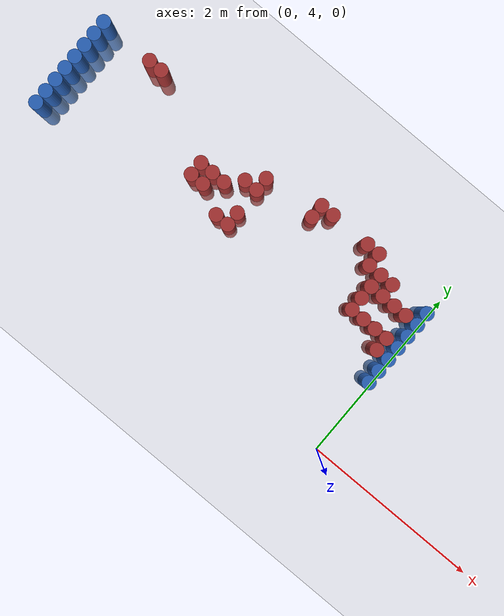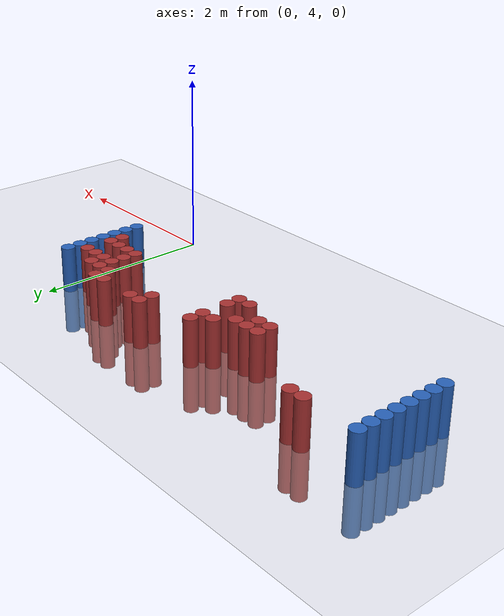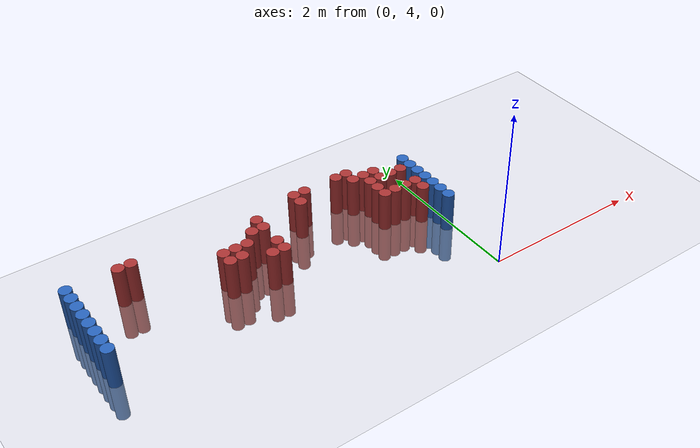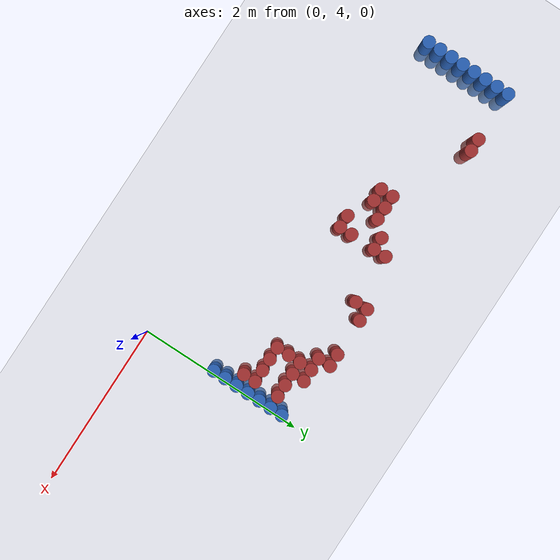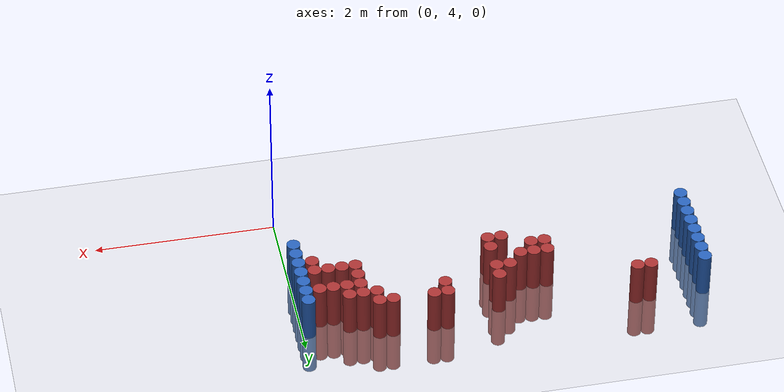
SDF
<sdf version="1.6">
 <world name="default">
  <model name="ground_plane">
   <static>1</static>
   <link name="link">
    <collision name="collision">
     <geometry><plane><normal>0 0 1</normal><size>100 100</size></plane></geometry>
     <surface><friction><ode><mu>100</mu><mu2>50</mu2></ode></friction></surface>
    </collision>
    <visual name="visual">
     <cast_shadows>0</cast_shadows>
     <geometry><plane><normal>0 0 1</normal><size>100 100</size></plane></geometry>
     <material>
      <script><uri>file://media/materials/scripts/gazebo.material</uri><name>Gazebo/Grey</name></script>
     </material>
    </visual>
   </link>
  </model>
  <model name="unit_cylinder_92">
   <static>1</static>
   <pose>-0.075000 4.875000 0.000000 0.000000 0.000000 0.000000</pose>
   <link name="link">
    <inertial>
     <mass>1</mass>
     <inertia><ixx>0.145833</ixx><ixy>0</ixy><ixz>0</ixz><iyy>0.145833</iyy><iyz>0</iyz><izz>0.125</izz></inertia>
    </inertial>
    <collision name="collision">
     <geometry><cylinder><radius>0.075000</radius><length>1</length></cylinder></geometry>
    </collision>
    <visual name="visual">
     <geometry><cylinder><radius>0.075000</radius><length>1</length></cylinder></geometry>
     <material>
      <ambient>0.152000 0.379000 0.720000 1</ambient>
      <diffuse>0.152000 0.379000 0.720000 1</diffuse>
     </material>
     <material>
      <script><name>Gazebo/Grey</name><uri>file://media/materials/scripts/gazebo.material</uri></script>
     </material>
    </visual>
   </link>
  </model>
  <model name="unit_cylinder_93">
   <static>1</static>
   <pose>-4.425000 4.875000 0.000000 0.000000 0.000000 0.000000</pose>
   <link name="link">
    <inertial>
     <mass>1</mass>
     <inertia><ixx>0.145833</ixx><ixy>0</ixy><ixz>0</ixz><iyy>0.145833</iyy><iyz>0</iyz><izz>0.125</izz></inertia>
    </inertial>
    <collision name="collision">
     <geometry><cylinder><radius>0.075000</radius><length>1</length></cylinder></geometry>
    </collision>
    <visual name="visual">
     <geometry><cylinder><radius>0.075000</radius><length>1</length></cylinder></geometry>
     <material>
      <ambient>0.152000 0.379000 0.720000 1</ambient>
      <diffuse>0.152000 0.379000 0.720000 1</diffuse>
     </material>
     <material>
      <script><name>Gazebo/Grey</name><uri>file://media/materials/scripts/gazebo.material</uri></script>
     </material>
    </visual>
   </link>
  </model>
  <model name="unit_cylinder_94">
   <static>1</static>
   <pose>-0.075000 5.025000 0.000000 0.000000 0.000000 0.000000</pose>
   <link name="link">
    <inertial>
     <mass>1</mass>
     <inertia><ixx>0.145833</ixx><ixy>0</ixy><ixz>0</ixz><iyy>0.145833</iyy><iyz>0</iyz><izz>0.125</izz></inertia>
    </inertial>
    <collision name="collision">
     <geometry><cylinder><radius>0.075000</radius><length>1</length></cylinder></geometry>
    </collision>
    <visual name="visual">
     <geometry><cylinder><radius>0.075000</radius><length>1</length></cylinder></geometry>
     <material>
      <ambient>0.152000 0.379000 0.720000 1</ambient>
      <diffuse>0.152000 0.379000 0.720000 1</diffuse>
     </material>
     <material>
      <script><name>Gazebo/Grey</name><uri>file://media/materials/scripts/gazebo.material</uri></script>
     </material>
    </visual>
   </link>
  </model>
  <model name="unit_cylinder_95">
   <static>1</static>
   <pose>-4.425000 5.025000 0.000000 0.000000 0.000000 0.000000</pose>
   <link name="link">
    <inertial>
     <mass>1</mass>
     <inertia><ixx>0.145833</ixx><ixy>0</ixy><ixz>0</ixz><iyy>0.145833</iyy><iyz>0</iyz><izz>0.125</izz></inertia>
    </inertial>
    <collision name="collision">
     <geometry><cylinder><radius>0.075000</radius><length>1</length></cylinder></geometry>
    </collision>
    <visual name="visual">
     <geometry><cylinder><radius>0.075000</radius><length>1</length></cylinder></geometry>
     <material>
      <ambient>0.152000 0.379000 0.720000 1</ambient>
      <diffuse>0.152000 0.379000 0.720000 1</diffuse>
     </material>
     <material>
      <script><name>Gazebo/Grey</name><uri>file://media/materials/scripts/gazebo.material</uri></script>
     </material>
    </visual>
   </link>
  </model>
  <model name="unit_cylinder_96">
   <static>1</static>
   <pose>-4.425000 5.175000 0.000000 0.000000 0.000000 0.000000</pose>
   <link name="link">
    <inertial>
     <mass>1</mass>
     <inertia><ixx>0.145833</ixx><ixy>0</ixy><ixz>0</ixz><iyy>0.145833</iyy><iyz>0</iyz><izz>0.125</izz></inertia>
    </inertial>
    <collision name="collision">
     <geometry><cylinder><radius>0.075000</radius><length>1</length></cylinder></geometry>
    </collision>
    <visual name="visual">
     <geometry><cylinder><radius>0.075000</radius><length>1</length></cylinder></geometry>
     <material>
      <ambient>0.152000 0.379000 0.720000 1</ambient>
      <diffuse>0.152000 0.379000 0.720000 1</diffuse>
     </material>
     <material>
      <script><name>Gazebo/Grey</name><uri>file://media/materials/scripts/gazebo.material</uri></script>
     </material>
    </visual>
   </link>
  </model>
  <model name="unit_cylinder_97">
   <static>1</static>
   <pose>-4.425000 5.325000 0.000000 0.000000 0.000000 0.000000</pose>
   <link name="link">
    <inertial>
     <mass>1</mass>
     <inertia><ixx>0.145833</ixx><ixy>0</ixy><ixz>0</ixz><iyy>0.145833</iyy><iyz>0</iyz><izz>0.125</izz></inertia>
    </inertial>
    <collision name="collision">
     <geometry><cylinder><radius>0.075000</radius><length>1</length></cylinder></geometry>
    </collision>
    <visual name="visual">
     <geometry><cylinder><radius>0.075000</radius><length>1</length></cylinder></geometry>
     <material>
      <ambient>0.152000 0.379000 0.720000 1</ambient>
      <diffuse>0.152000 0.379000 0.720000 1</diffuse>
     </material>
     <material>
      <script><name>Gazebo/Grey</name><uri>file://media/materials/scripts/gazebo.material</uri></script>
     </material>
    </visual>
   </link>
  </model>
  <model name="unit_cylinder_98">
   <static>1</static>
   <pose>-4.425000 5.475000 0.000000 0.000000 0.000000 0.000000</pose>
   <link name="link">
    <inertial>
     <mass>1</mass>
     <inertia><ixx>0.145833</ixx><ixy>0</ixy><ixz>0</ixz><iyy>0.145833</iyy><iyz>0</iyz><izz>0.125</izz></inertia>
    </inertial>
    <collision name="collision">
     <geometry><cylinder><radius>0.075000</radius><length>1</length></cylinder></geometry>
    </collision>
    <visual name="visual">
     <geometry><cylinder><radius>0.075000</radius><length>1</length></cylinder></geometry>
     <material>
      <ambient>0.152000 0.379000 0.720000 1</ambient>
      <diffuse>0.152000 0.379000 0.720000 1</diffuse>
     </material>
     <material>
      <script><name>Gazebo/Grey</name><uri>file://media/materials/scripts/gazebo.material</uri></script>
     </material>
    </visual>
   </link>
  </model>
  <model name="unit_cylinder_99">
   <static>1</static>
   <pose>-4.425000 5.625000 0.000000 0.000000 0.000000 0.000000</pose>
   <link name="link">
    <inertial>
     <mass>1</mass>
     <inertia><ixx>0.145833</ixx><ixy>0</ixy><ixz>0</ixz><iyy>0.145833</iyy><iyz>0</iyz><izz>0.125</izz></inertia>
    </inertial>
    <collision name="collision">
     <geometry><cylinder><radius>0.075000</radius><length>1</length></cylinder></geometry>
    </collision>
    <visual name="visual">
     <geometry><cylinder><radius>0.075000</radius><length>1</length></cylinder></geometry>
     <material>
      <ambient>0.152000 0.379000 0.720000 1</ambient>
      <diffuse>0.152000 0.379000 0.720000 1</diffuse>
     </material>
     <material>
      <script><name>Gazebo/Grey</name><uri>file://media/materials/scripts/gazebo.material</uri></script>
     </material>
    </visual>
   </link>
  </model>
  <model name="unit_cylinder_100">
   <static>1</static>
   <pose>-4.425000 5.775000 0.000000 0.000000 0.000000 0.000000</pose>
   <link name="link">
    <inertial>
     <mass>1</mass>
     <inertia><ixx>0.145833</ixx><ixy>0</ixy><ixz>0</ixz><iyy>0.145833</iyy><iyz>0</iyz><izz>0.125</izz></inertia>
    </inertial>
    <collision name="collision">
     <geometry><cylinder><radius>0.075000</radius><length>1</length></cylinder></geometry>
    </collision>
    <visual name="visual">
     <geometry><cylinder><radius>0.075000</radius><length>1</length></cylinder></geometry>
     <material>
      <ambient>0.152000 0.379000 0.720000 1</ambient>
      <diffuse>0.152000 0.379000 0.720000 1</diffuse>
     </material>
     <material>
      <script><name>Gazebo/Grey</name><uri>file://media/materials/scripts/gazebo.material</uri></script>
     </material>
    </visual>
   </link>
  </model>
  <model name="unit_cylinder_101">
   <static>1</static>
   <pose>-4.425000 5.925000 0.000000 0.000000 0.000000 0.000000</pose>
   <link name="link">
    <inertial>
     <mass>1</mass>
     <inertia><ixx>0.145833</ixx><ixy>0</ixy><ixz>0</ixz><iyy>0.145833</iyy><iyz>0</iyz><izz>0.125</izz></inertia>
    </inertial>
    <collision name="collision">
     <geometry><cylinder><radius>0.075000</radius><length>1</length></cylinder></geometry>
    </collision>
    <visual name="visual">
     <geometry><cylinder><radius>0.075000</radius><length>1</length></cylinder></geometry>
     <material>
      <ambient>0.152000 0.379000 0.720000 1</ambient>
      <diffuse>0.152000 0.379000 0.720000 1</diffuse>
     </material>
     <material>
      <script><name>Gazebo/Grey</name><uri>file://media/materials/scripts/gazebo.material</uri></script>
     </material>
    </visual>
   </link>
  </model>
  <model name="unit_cylinder_149">
   <static>1</static>
   <pose>-3.825000 5.925000 0.000000 0.000000 0.000000 0.000000</pose>
   <link name="link">
    <inertial>
     <mass>1</mass>
     <inertia><ixx>0.145833</ixx><ixy>0</ixy><ixz>0</ixz><iyy>0.145833</iyy><iyz>0</iyz><izz>0.125</izz></inertia>
    </inertial>
    <collision name="collision">
     <geometry><cylinder><radius>0.075000</radius><length>1</length></cylinder></geometry>
    </collision>
    <visual name="visual">
     <geometry><cylinder><radius>0.075000</radius><length>1</length></cylinder></geometry>
     <material>
      <ambient>0.648000 0.192000 0.192000 1</ambient>
      <diffuse>0.648000 0.192000 0.192000 1</diffuse>
     </material>
     <material>
      <script><name>Gazebo/Grey</name><uri>file://media/materials/scripts/gazebo.material</uri></script>
     </material>
    </visual>
   </link>
  </model>
  <model name="unit_cylinder_152">
   <static>1</static>
   <pose>-3.675000 5.925000 0.000000 0.000000 0.000000 0.000000</pose>
   <link name="link">
    <inertial>
     <mass>1</mass>
     <inertia><ixx>0.145833</ixx><ixy>0</ixy><ixz>0</ixz><iyy>0.145833</iyy><iyz>0</iyz><izz>0.125</izz></inertia>
    </inertial>
    <collision name="collision">
     <geometry><cylinder><radius>0.075000</radius><length>1</length></cylinder></geometry>
    </collision>
    <visual name="visual">
     <geometry><cylinder><radius>0.075000</radius><length>1</length></cylinder></geometry>
     <material>
      <ambient>0.648000 0.192000 0.192000 1</ambient>
      <diffuse>0.648000 0.192000 0.192000 1</diffuse>
     </material>
     <material>
      <script><name>Gazebo/Grey</name><uri>file://media/materials/scripts/gazebo.material</uri></script>
     </material>
    </visual>
   </link>
  </model>
  <model name="unit_cylinder_158">
   <static>1</static>
   <pose>-2.775000 5.325000 0.000000 0.000000 0.000000 0.000000</pose>
   <link name="link">
    <inertial>
     <mass>1</mass>
     <inertia><ixx>0.145833</ixx><ixy>0</ixy><ixz>0</ixz><iyy>0.145833</iyy><iyz>0</iyz><izz>0.125</izz></inertia>
    </inertial>
    <collision name="collision">
     <geometry><cylinder><radius>0.075000</radius><length>1</length></cylinder></geometry>
    </collision>
    <visual name="visual">
     <geometry><cylinder><radius>0.075000</radius><length>1</length></cylinder></geometry>
     <material>
      <ambient>0.648000 0.192000 0.192000 1</ambient>
      <diffuse>0.648000 0.192000 0.192000 1</diffuse>
     </material>
     <material>
      <script><name>Gazebo/Grey</name><uri>file://media/materials/scripts/gazebo.material</uri></script>
     </material>
    </visual>
   </link>
  </model>
  <model name="unit_cylinder_159">
   <static>1</static>
   <pose>-2.775000 5.475000 0.000000 0.000000 0.000000 0.000000</pose>
   <link name="link">
    <inertial>
     <mass>1</mass>
     <inertia><ixx>0.145833</ixx><ixy>0</ixy><ixz>0</ixz><iyy>0.145833</iyy><iyz>0</iyz><izz>0.125</izz></inertia>
    </inertial>
    <collision name="collision">
     <geometry><cylinder><radius>0.075000</radius><length>1</length></cylinder></geometry>
    </collision>
    <visual name="visual">
     <geometry><cylinder><radius>0.075000</radius><length>1</length></cylinder></geometry>
     <material>
      <ambient>0.648000 0.192000 0.192000 1</ambient>
      <diffuse>0.648000 0.192000 0.192000 1</diffuse>
     </material>
     <material>
      <script><name>Gazebo/Grey</name><uri>file://media/materials/scripts/gazebo.material</uri></script>
     </material>
    </visual>
   </link>
  </model>
  <model name="unit_cylinder_160">
   <static>1</static>
   <pose>-2.625000 5.325000 0.000000 0.000000 0.000000 0.000000</pose>
   <link name="link">
    <inertial>
     <mass>1</mass>
     <inertia><ixx>0.145833</ixx><ixy>0</ixy><ixz>0</ixz><iyy>0.145833</iyy><iyz>0</iyz><izz>0.125</izz></inertia>
    </inertial>
    <collision name="collision">
     <geometry><cylinder><radius>0.075000</radius><length>1</length></cylinder></geometry>
    </collision>
    <visual name="visual">
     <geometry><cylinder><radius>0.075000</radius><length>1</length></cylinder></geometry>
     <material>
      <ambient>0.648000 0.192000 0.192000 1</ambient>
      <diffuse>0.648000 0.192000 0.192000 1</diffuse>
     </material>
     <material>
      <script><name>Gazebo/Grey</name><uri>file://media/materials/scripts/gazebo.material</uri></script>
     </material>
    </visual>
   </link>
  </model>
  <model name="unit_cylinder_161">
   <static>1</static>
   <pose>-2.625000 5.475000 0.000000 0.000000 0.000000 0.000000</pose>
   <link name="link">
    <inertial>
     <mass>1</mass>
     <inertia><ixx>0.145833</ixx><ixy>0</ixy><ixz>0</ixz><iyy>0.145833</iyy><iyz>0</iyz><izz>0.125</izz></inertia>
    </inertial>
    <collision name="collision">
     <geometry><cylinder><radius>0.075000</radius><length>1</length></cylinder></geometry>
    </collision>
    <visual name="visual">
     <geometry><cylinder><radius>0.075000</radius><length>1</length></cylinder></geometry>
     <material>
      <ambient>0.648000 0.192000 0.192000 1</ambient>
      <diffuse>0.648000 0.192000 0.192000 1</diffuse>
     </material>
     <material>
      <script><name>Gazebo/Grey</name><uri>file://media/materials/scripts/gazebo.material</uri></script>
     </material>
    </visual>
   </link>
  </model>
  <model name="unit_cylinder_162">
   <static>1</static>
   <pose>-2.475000 5.475000 0.000000 0.000000 0.000000 0.000000</pose>
   <link name="link">
    <inertial>
     <mass>1</mass>
     <inertia><ixx>0.145833</ixx><ixy>0</ixy><ixz>0</ixz><iyy>0.145833</iyy><iyz>0</iyz><izz>0.125</izz></inertia>
    </inertial>
    <collision name="collision">
     <geometry><cylinder><radius>0.075000</radius><length>1</length></cylinder></geometry>
    </collision>
    <visual name="visual">
     <geometry><cylinder><radius>0.075000</radius><length>1</length></cylinder></geometry>
     <material>
      <ambient>0.648000 0.192000 0.192000 1</ambient>
      <diffuse>0.648000 0.192000 0.192000 1</diffuse>
     </material>
     <material>
      <script><name>Gazebo/Grey</name><uri>file://media/materials/scripts/gazebo.material</uri></script>
     </material>
    </visual>
   </link>
  </model>
  <model name="unit_cylinder_163">
   <static>1</static>
   <pose>-2.325000 5.175000 0.000000 0.000000 0.000000 0.000000</pose>
   <link name="link">
    <inertial>
     <mass>1</mass>
     <inertia><ixx>0.145833</ixx><ixy>0</ixy><ixz>0</ixz><iyy>0.145833</iyy><iyz>0</iyz><izz>0.125</izz></inertia>
    </inertial>
    <collision name="collision">
     <geometry><cylinder><radius>0.075000</radius><length>1</length></cylinder></geometry>
    </collision>
    <visual name="visual">
     <geometry><cylinder><radius>0.075000</radius><length>1</length></cylinder></geometry>
     <material>
      <ambient>0.648000 0.192000 0.192000 1</ambient>
      <diffuse>0.648000 0.192000 0.192000 1</diffuse>
     </material>
     <material>
      <script><name>Gazebo/Grey</name><uri>file://media/materials/scripts/gazebo.material</uri></script>
     </material>
    </visual>
   </link>
  </model>
  <model name="unit_cylinder_164">
   <static>1</static>
   <pose>-2.325000 5.625000 0.000000 0.000000 0.000000 0.000000</pose>
   <link name="link">
    <inertial>
     <mass>1</mass>
     <inertia><ixx>0.145833</ixx><ixy>0</ixy><ixz>0</ixz><iyy>0.145833</iyy><iyz>0</iyz><izz>0.125</izz></inertia>
    </inertial>
    <collision name="collision">
     <geometry><cylinder><radius>0.075000</radius><length>1</length></cylinder></geometry>
    </collision>
    <visual name="visual">
     <geometry><cylinder><radius>0.075000</radius><length>1</length></cylinder></geometry>
     <material>
      <ambient>0.648000 0.192000 0.192000 1</ambient>
      <diffuse>0.648000 0.192000 0.192000 1</diffuse>
     </material>
     <material>
      <script><name>Gazebo/Grey</name><uri>file://media/materials/scripts/gazebo.material</uri></script>
     </material>
    </visual>
   </link>
  </model>
  <model name="unit_cylinder_165">
   <static>1</static>
   <pose>-2.175000 5.175000 0.000000 0.000000 0.000000 0.000000</pose>
   <link name="link">
    <inertial>
     <mass>1</mass>
     <inertia><ixx>0.145833</ixx><ixy>0</ixy><ixz>0</ixz><iyy>0.145833</iyy><iyz>0</iyz><izz>0.125</izz></inertia>
    </inertial>
    <collision name="collision">
     <geometry><cylinder><radius>0.075000</radius><length>1</length></cylinder></geometry>
    </collision>
    <visual name="visual">
     <geometry><cylinder><radius>0.075000</radius><length>1</length></cylinder></geometry>
     <material>
      <ambient>0.648000 0.192000 0.192000 1</ambient>
      <diffuse>0.648000 0.192000 0.192000 1</diffuse>
     </material>
     <material>
      <script><name>Gazebo/Grey</name><uri>file://media/materials/scripts/gazebo.material</uri></script>
     </material>
    </visual>
   </link>
  </model>
  <model name="unit_cylinder_166">
   <static>1</static>
   <pose>-2.175000 5.325000 0.000000 0.000000 0.000000 0.000000</pose>
   <link name="link">
    <inertial>
     <mass>1</mass>
     <inertia><ixx>0.145833</ixx><ixy>0</ixy><ixz>0</ixz><iyy>0.145833</iyy><iyz>0</iyz><izz>0.125</izz></inertia>
    </inertial>
    <collision name="collision">
     <geometry><cylinder><radius>0.075000</radius><length>1</length></cylinder></geometry>
    </collision>
    <visual name="visual">
     <geometry><cylinder><radius>0.075000</radius><length>1</length></cylinder></geometry>
     <material>
      <ambient>0.648000 0.192000 0.192000 1</ambient>
      <diffuse>0.648000 0.192000 0.192000 1</diffuse>
     </material>
     <material>
      <script><name>Gazebo/Grey</name><uri>file://media/materials/scripts/gazebo.material</uri></script>
     </material>
    </visual>
   </link>
  </model>
  <model name="unit_cylinder_167">
   <static>1</static>
   <pose>-2.175000 5.625000 0.000000 0.000000 0.000000 0.000000</pose>
   <link name="link">
    <inertial>
     <mass>1</mass>
     <inertia><ixx>0.145833</ixx><ixy>0</ixy><ixz>0</ixz><iyy>0.145833</iyy><iyz>0</iyz><izz>0.125</izz></inertia>
    </inertial>
    <collision name="collision">
     <geometry><cylinder><radius>0.075000</radius><length>1</length></cylinder></geometry>
    </collision>
    <visual name="visual">
     <geometry><cylinder><radius>0.075000</radius><length>1</length></cylinder></geometry>
     <material>
      <ambient>0.648000 0.192000 0.192000 1</ambient>
      <diffuse>0.648000 0.192000 0.192000 1</diffuse>
     </material>
     <material>
      <script><name>Gazebo/Grey</name><uri>file://media/materials/scripts/gazebo.material</uri></script>
     </material>
    </visual>
   </link>
  </model>
  <model name="unit_cylinder_168">
   <static>1</static>
   <pose>-2.175000 5.775000 0.000000 0.000000 0.000000 0.000000</pose>
   <link name="link">
    <inertial>
     <mass>1</mass>
     <inertia><ixx>0.145833</ixx><ixy>0</ixy><ixz>0</ixz><iyy>0.145833</iyy><iyz>0</iyz><izz>0.125</izz></inertia>
    </inertial>
    <collision name="collision">
     <geometry><cylinder><radius>0.075000</radius><length>1</length></cylinder></geometry>
    </collision>
    <visual name="visual">
     <geometry><cylinder><radius>0.075000</radius><length>1</length></cylinder></geometry>
     <material>
      <ambient>0.648000 0.192000 0.192000 1</ambient>
      <diffuse>0.648000 0.192000 0.192000 1</diffuse>
     </material>
     <material>
      <script><name>Gazebo/Grey</name><uri>file://media/materials/scripts/gazebo.material</uri></script>
     </material>
    </visual>
   </link>
  </model>
  <model name="unit_cylinder_178">
   <static>1</static>
   <pose>-1.575000 5.775000 0.000000 0.000000 0.000000 0.000000</pose>
   <link name="link">
    <inertial>
     <mass>1</mass>
     <inertia><ixx>0.145833</ixx><ixy>0</ixy><ixz>0</ixz><iyy>0.145833</iyy><iyz>0</iyz><izz>0.125</izz></inertia>
    </inertial>
    <collision name="collision">
     <geometry><cylinder><radius>0.075000</radius><length>1</length></cylinder></geometry>
    </collision>
    <visual name="visual">
     <geometry><cylinder><radius>0.075000</radius><length>1</length></cylinder></geometry>
     <material>
      <ambient>0.648000 0.192000 0.192000 1</ambient>
      <diffuse>0.648000 0.192000 0.192000 1</diffuse>
     </material>
     <material>
      <script><name>Gazebo/Grey</name><uri>file://media/materials/scripts/gazebo.material</uri></script>
     </material>
    </visual>
   </link>
  </model>
  <model name="unit_cylinder_179">
   <static>1</static>
   <pose>-1.575000 5.925000 0.000000 0.000000 0.000000 0.000000</pose>
   <link name="link">
    <inertial>
     <mass>1</mass>
     <inertia><ixx>0.145833</ixx><ixy>0</ixy><ixz>0</ixz><iyy>0.145833</iyy><iyz>0</iyz><izz>0.125</izz></inertia>
    </inertial>
    <collision name="collision">
     <geometry><cylinder><radius>0.075000</radius><length>1</length></cylinder></geometry>
    </collision>
    <visual name="visual">
     <geometry><cylinder><radius>0.075000</radius><length>1</length></cylinder></geometry>
     <material>
      <ambient>0.648000 0.192000 0.192000 1</ambient>
      <diffuse>0.648000 0.192000 0.192000 1</diffuse>
     </material>
     <material>
      <script><name>Gazebo/Grey</name><uri>file://media/materials/scripts/gazebo.material</uri></script>
     </material>
    </visual>
   </link>
  </model>
  <model name="unit_cylinder_185">
   <static>1</static>
   <pose>-1.425000 5.925000 0.000000 0.000000 0.000000 0.000000</pose>
   <link name="link">
    <inertial>
     <mass>1</mass>
     <inertia><ixx>0.145833</ixx><ixy>0</ixy><ixz>0</ixz><iyy>0.145833</iyy><iyz>0</iyz><izz>0.125</izz></inertia>
    </inertial>
    <collision name="collision">
     <geometry><cylinder><radius>0.075000</radius><length>1</length></cylinder></geometry>
    </collision>
    <visual name="visual">
     <geometry><cylinder><radius>0.075000</radius><length>1</length></cylinder></geometry>
     <material>
      <ambient>0.648000 0.192000 0.192000 1</ambient>
      <diffuse>0.648000 0.192000 0.192000 1</diffuse>
     </material>
     <material>
      <script><name>Gazebo/Grey</name><uri>file://media/materials/scripts/gazebo.material</uri></script>
     </material>
    </visual>
   </link>
  </model>
  <model name="unit_cylinder_191">
   <static>1</static>
   <pose>-0.975000 5.925000 0.000000 0.000000 0.000000 0.000000</pose>
   <link name="link">
    <inertial>
     <mass>1</mass>
     <inertia><ixx>0.145833</ixx><ixy>0</ixy><ixz>0</ixz><iyy>0.145833</iyy><iyz>0</iyz><izz>0.125</izz></inertia>
    </inertial>
    <collision name="collision">
     <geometry><cylinder><radius>0.075000</radius><length>1</length></cylinder></geometry>
    </collision>
    <visual name="visual">
     <geometry><cylinder><radius>0.075000</radius><length>1</length></cylinder></geometry>
     <material>
      <ambient>0.648000 0.192000 0.192000 1</ambient>
      <diffuse>0.648000 0.192000 0.192000 1</diffuse>
     </material>
     <material>
      <script><name>Gazebo/Grey</name><uri>file://media/materials/scripts/gazebo.material</uri></script>
     </material>
    </visual>
   </link>
  </model>
  <model name="unit_cylinder_196">
   <static>1</static>
   <pose>-0.825000 5.775000 0.000000 0.000000 0.000000 0.000000</pose>
   <link name="link">
    <inertial>
     <mass>1</mass>
     <inertia><ixx>0.145833</ixx><ixy>0</ixy><ixz>0</ixz><iyy>0.145833</iyy><iyz>0</iyz><izz>0.125</izz></inertia>
    </inertial>
    <collision name="collision">
     <geometry><cylinder><radius>0.075000</radius><length>1</length></cylinder></geometry>
    </collision>
    <visual name="visual">
     <geometry><cylinder><radius>0.075000</radius><length>1</length></cylinder></geometry>
     <material>
      <ambient>0.648000 0.192000 0.192000 1</ambient>
      <diffuse>0.648000 0.192000 0.192000 1</diffuse>
     </material>
     <material>
      <script><name>Gazebo/Grey</name><uri>file://media/materials/scripts/gazebo.material</uri></script>
     </material>
    </visual>
   </link>
  </model>
  <model name="unit_cylinder_197">
   <static>1</static>
   <pose>-0.825000 5.925000 0.000000 0.000000 0.000000 0.000000</pose>
   <link name="link">
    <inertial>
     <mass>1</mass>
     <inertia><ixx>0.145833</ixx><ixy>0</ixy><ixz>0</ixz><iyy>0.145833</iyy><iyz>0</iyz><izz>0.125</izz></inertia>
    </inertial>
    <collision name="collision">
     <geometry><cylinder><radius>0.075000</radius><length>1</length></cylinder></geometry>
    </collision>
    <visual name="visual">
     <geometry><cylinder><radius>0.075000</radius><length>1</length></cylinder></geometry>
     <material>
      <ambient>0.648000 0.192000 0.192000 1</ambient>
      <diffuse>0.648000 0.192000 0.192000 1</diffuse>
     </material>
     <material>
      <script><name>Gazebo/Grey</name><uri>file://media/materials/scripts/gazebo.material</uri></script>
     </material>
    </visual>
   </link>
  </model>
  <model name="unit_cylinder_204">
   <static>1</static>
   <pose>-0.675000 5.325000 0.000000 0.000000 0.000000 0.000000</pose>
   <link name="link">
    <inertial>
     <mass>1</mass>
     <inertia><ixx>0.145833</ixx><ixy>0</ixy><ixz>0</ixz><iyy>0.145833</iyy><iyz>0</iyz><izz>0.125</izz></inertia>
    </inertial>
    <collision name="collision">
     <geometry><cylinder><radius>0.075000</radius><length>1</length></cylinder></geometry>
    </collision>
    <visual name="visual">
     <geometry><cylinder><radius>0.075000</radius><length>1</length></cylinder></geometry>
     <material>
      <ambient>0.648000 0.192000 0.192000 1</ambient>
      <diffuse>0.648000 0.192000 0.192000 1</diffuse>
     </material>
     <material>
      <script><name>Gazebo/Grey</name><uri>file://media/materials/scripts/gazebo.material</uri></script>
     </material>
    </visual>
   </link>
  </model>
  <model name="unit_cylinder_205">
   <static>1</static>
   <pose>-0.675000 5.475000 0.000000 0.000000 0.000000 0.000000</pose>
   <link name="link">
    <inertial>
     <mass>1</mass>
     <inertia><ixx>0.145833</ixx><ixy>0</ixy><ixz>0</ixz><iyy>0.145833</iyy><iyz>0</iyz><izz>0.125</izz></inertia>
    </inertial>
    <collision name="collision">
     <geometry><cylinder><radius>0.075000</radius><length>1</length></cylinder></geometry>
    </collision>
    <visual name="visual">
     <geometry><cylinder><radius>0.075000</radius><length>1</length></cylinder></geometry>
     <material>
      <ambient>0.648000 0.192000 0.192000 1</ambient>
      <diffuse>0.648000 0.192000 0.192000 1</diffuse>
     </material>
     <material>
      <script><name>Gazebo/Grey</name><uri>file://media/materials/scripts/gazebo.material</uri></script>
     </material>
    </visual>
   </link>
  </model>
  <model name="unit_cylinder_206">
   <static>1</static>
   <pose>-0.675000 5.625000 0.000000 0.000000 0.000000 0.000000</pose>
   <link name="link">
    <inertial>
     <mass>1</mass>
     <inertia><ixx>0.145833</ixx><ixy>0</ixy><ixz>0</ixz><iyy>0.145833</iyy><iyz>0</iyz><izz>0.125</izz></inertia>
    </inertial>
    <collision name="collision">
     <geometry><cylinder><radius>0.075000</radius><length>1</length></cylinder></geometry>
    </collision>
    <visual name="visual">
     <geometry><cylinder><radius>0.075000</radius><length>1</length></cylinder></geometry>
     <material>
      <ambient>0.648000 0.192000 0.192000 1</ambient>
      <diffuse>0.648000 0.192000 0.192000 1</diffuse>
     </material>
     <material>
      <script><name>Gazebo/Grey</name><uri>file://media/materials/scripts/gazebo.material</uri></script>
     </material>
    </visual>
   </link>
  </model>
  <model name="unit_cylinder_207">
   <static>1</static>
   <pose>-0.675000 5.775000 0.000000 0.000000 0.000000 0.000000</pose>
   <link name="link">
    <inertial>
     <mass>1</mass>
     <inertia><ixx>0.145833</ixx><ixy>0</ixy><ixz>0</ixz><iyy>0.145833</iyy><iyz>0</iyz><izz>0.125</izz></inertia>
    </inertial>
    <collision name="collision">
     <geometry><cylinder><radius>0.075000</radius><length>1</length></cylinder></geometry>
    </collision>
    <visual name="visual">
     <geometry><cylinder><radius>0.075000</radius><length>1</length></cylinder></geometry>
     <material>
      <ambient>0.648000 0.192000 0.192000 1</ambient>
      <diffuse>0.648000 0.192000 0.192000 1</diffuse>
     </material>
     <material>
      <script><name>Gazebo/Grey</name><uri>file://media/materials/scripts/gazebo.material</uri></script>
     </material>
    </visual>
   </link>
  </model>
  <model name="unit_cylinder_217">
   <static>1</static>
   <pose>-0.525000 5.325000 0.000000 0.000000 0.000000 0.000000</pose>
   <link name="link">
    <inertial>
     <mass>1</mass>
     <inertia><ixx>0.145833</ixx><ixy>0</ixy><ixz>0</ixz><iyy>0.145833</iyy><iyz>0</iyz><izz>0.125</izz></inertia>
    </inertial>
    <collision name="collision">
     <geometry><cylinder><radius>0.075000</radius><length>1</length></cylinder></geometry>
    </collision>
    <visual name="visual">
     <geometry><cylinder><radius>0.075000</radius><length>1</length></cylinder></geometry>
     <material>
      <ambient>0.648000 0.192000 0.192000 1</ambient>
      <diffuse>0.648000 0.192000 0.192000 1</diffuse>
     </material>
     <material>
      <script><name>Gazebo/Grey</name><uri>file://media/materials/scripts/gazebo.material</uri></script>
     </material>
    </visual>
   </link>
  </model>
  <model name="unit_cylinder_218">
   <static>1</static>
   <pose>-0.525000 5.625000 0.000000 0.000000 0.000000 0.000000</pose>
   <link name="link">
    <inertial>
     <mass>1</mass>
     <inertia><ixx>0.145833</ixx><ixy>0</ixy><ixz>0</ixz><iyy>0.145833</iyy><iyz>0</iyz><izz>0.125</izz></inertia>
    </inertial>
    <collision name="collision">
     <geometry><cylinder><radius>0.075000</radius><length>1</length></cylinder></geometry>
    </collision>
    <visual name="visual">
     <geometry><cylinder><radius>0.075000</radius><length>1</length></cylinder></geometry>
     <material>
      <ambient>0.648000 0.192000 0.192000 1</ambient>
      <diffuse>0.648000 0.192000 0.192000 1</diffuse>
     </material>
     <material>
      <script><name>Gazebo/Grey</name><uri>file://media/materials/scripts/gazebo.material</uri></script>
     </material>
    </visual>
   </link>
  </model>
  <model name="unit_cylinder_219">
   <static>1</static>
   <pose>-0.525000 5.775000 0.000000 0.000000 0.000000 0.000000</pose>
   <link name="link">
    <inertial>
     <mass>1</mass>
     <inertia><ixx>0.145833</ixx><ixy>0</ixy><ixz>0</ixz><iyy>0.145833</iyy><iyz>0</iyz><izz>0.125</izz></inertia>
    </inertial>
    <collision name="collision">
     <geometry><cylinder><radius>0.075000</radius><length>1</length></cylinder></geometry>
    </collision>
    <visual name="visual">
     <geometry><cylinder><radius>0.075000</radius><length>1</length></cylinder></geometry>
     <material>
      <ambient>0.648000 0.192000 0.192000 1</ambient>
      <diffuse>0.648000 0.192000 0.192000 1</diffuse>
     </material>
     <material>
      <script><name>Gazebo/Grey</name><uri>file://media/materials/scripts/gazebo.material</uri></script>
     </material>
    </visual>
   </link>
  </model>
  <model name="unit_cylinder_226">
   <static>1</static>
   <pose>-0.375000 5.325000 0.000000 0.000000 0.000000 0.000000</pose>
   <link name="link">
    <inertial>
     <mass>1</mass>
     <inertia><ixx>0.145833</ixx><ixy>0</ixy><ixz>0</ixz><iyy>0.145833</iyy><iyz>0</iyz><izz>0.125</izz></inertia>
    </inertial>
    <collision name="collision">
     <geometry><cylinder><radius>0.075000</radius><length>1</length></cylinder></geometry>
    </collision>
    <visual name="visual">
     <geometry><cylinder><radius>0.075000</radius><length>1</length></cylinder></geometry>
     <material>
      <ambient>0.648000 0.192000 0.192000 1</ambient>
      <diffuse>0.648000 0.192000 0.192000 1</diffuse>
     </material>
     <material>
      <script><name>Gazebo/Grey</name><uri>file://media/materials/scripts/gazebo.material</uri></script>
     </material>
    </visual>
   </link>
  </model>
  <model name="unit_cylinder_227">
   <static>1</static>
   <pose>-0.375000 5.625000 0.000000 0.000000 0.000000 0.000000</pose>
   <link name="link">
    <inertial>
     <mass>1</mass>
     <inertia><ixx>0.145833</ixx><ixy>0</ixy><ixz>0</ixz><iyy>0.145833</iyy><iyz>0</iyz><izz>0.125</izz></inertia>
    </inertial>
    <collision name="collision">
     <geometry><cylinder><radius>0.075000</radius><length>1</length></cylinder></geometry>
    </collision>
    <visual name="visual">
     <geometry><cylinder><radius>0.075000</radius><length>1</length></cylinder></geometry>
     <material>
      <ambient>0.648000 0.192000 0.192000 1</ambient>
      <diffuse>0.648000 0.192000 0.192000 1</diffuse>
     </material>
     <material>
      <script><name>Gazebo/Grey</name><uri>file://media/materials/scripts/gazebo.material</uri></script>
     </material>
    </visual>
   </link>
  </model>
  <model name="unit_cylinder_235">
   <static>1</static>
   <pose>-0.225000 5.175000 0.000000 0.000000 0.000000 0.000000</pose>
   <link name="link">
    <inertial>
     <mass>1</mass>
     <inertia><ixx>0.145833</ixx><ixy>0</ixy><ixz>0</ixz><iyy>0.145833</iyy><iyz>0</iyz><izz>0.125</izz></inertia>
    </inertial>
    <collision name="collision">
     <geometry><cylinder><radius>0.075000</radius><length>1</length></cylinder></geometry>
    </collision>
    <visual name="visual">
     <geometry><cylinder><radius>0.075000</radius><length>1</length></cylinder></geometry>
     <material>
      <ambient>0.648000 0.192000 0.192000 1</ambient>
      <diffuse>0.648000 0.192000 0.192000 1</diffuse>
     </material>
     <material>
      <script><name>Gazebo/Grey</name><uri>file://media/materials/scripts/gazebo.material</uri></script>
     </material>
    </visual>
   </link>
  </model>
  <model name="unit_cylinder_236">
   <static>1</static>
   <pose>-0.225000 5.325000 0.000000 0.000000 0.000000 0.000000</pose>
   <link name="link">
    <inertial>
     <mass>1</mass>
     <inertia><ixx>0.145833</ixx><ixy>0</ixy><ixz>0</ixz><iyy>0.145833</iyy><iyz>0</iyz><izz>0.125</izz></inertia>
    </inertial>
    <collision name="collision">
     <geometry><cylinder><radius>0.075000</radius><length>1</length></cylinder></geometry>
    </collision>
    <visual name="visual">
     <geometry><cylinder><radius>0.075000</radius><length>1</length></cylinder></geometry>
     <material>
      <ambient>0.648000 0.192000 0.192000 1</ambient>
      <diffuse>0.648000 0.192000 0.192000 1</diffuse>
     </material>
     <material>
      <script><name>Gazebo/Grey</name><uri>file://media/materials/scripts/gazebo.material</uri></script>
     </material>
    </visual>
   </link>
  </model>
  <model name="unit_cylinder_237">
   <static>1</static>
   <pose>-0.225000 5.625000 0.000000 0.000000 0.000000 0.000000</pose>
   <link name="link">
    <inertial>
     <mass>1</mass>
     <inertia><ixx>0.145833</ixx><ixy>0</ixy><ixz>0</ixz><iyy>0.145833</iyy><iyz>0</iyz><izz>0.125</izz></inertia>
    </inertial>
    <collision name="collision">
     <geometry><cylinder><radius>0.075000</radius><length>1</length></cylinder></geometry>
    </collision>
    <visual name="visual">
     <geometry><cylinder><radius>0.075000</radius><length>1</length></cylinder></geometry>
     <material>
      <ambient>0.648000 0.192000 0.192000 1</ambient>
      <diffuse>0.648000 0.192000 0.192000 1</diffuse>
     </material>
     <material>
      <script><name>Gazebo/Grey</name><uri>file://media/materials/scripts/gazebo.material</uri></script>
     </material>
    </visual>
   </link>
  </model>
  <model name="unit_cylinder_245">
   <static>1</static>
   <pose>-0.075000 5.175000 0.000000 0.000000 0.000000 0.000000</pose>
   <link name="link">
    <inertial>
     <mass>1</mass>
     <inertia><ixx>0.145833</ixx><ixy>0</ixy><ixz>0</ixz><iyy>0.145833</iyy><iyz>0</iyz><izz>0.125</izz></inertia>
    </inertial>
    <collision name="collision">
     <geometry><cylinder><radius>0.075000</radius><length>1</length></cylinder></geometry>
    </collision>
    <visual name="visual">
     <geometry><cylinder><radius>0.075000</radius><length>1</length></cylinder></geometry>
     <material>
      <ambient>0.152000 0.379000 0.720000 1</ambient>
      <diffuse>0.152000 0.379000 0.720000 1</diffuse>
     </material>
     <material>
      <script><name>Gazebo/Grey</name><uri>file://media/materials/scripts/gazebo.material</uri></script>
     </material>
    </visual>
   </link>
  </model>
  <model name="unit_cylinder_246">
   <static>1</static>
   <pose>-0.075000 5.325000 0.000000 0.000000 0.000000 0.000000</pose>
   <link name="link">
    <inertial>
     <mass>1</mass>
     <inertia><ixx>0.145833</ixx><ixy>0</ixy><ixz>0</ixz><iyy>0.145833</iyy><iyz>0</iyz><izz>0.125</izz></inertia>
    </inertial>
    <collision name="collision">
     <geometry><cylinder><radius>0.075000</radius><length>1</length></cylinder></geometry>
    </collision>
    <visual name="visual">
     <geometry><cylinder><radius>0.075000</radius><length>1</length></cylinder></geometry>
     <material>
      <ambient>0.152000 0.379000 0.720000 1</ambient>
      <diffuse>0.152000 0.379000 0.720000 1</diffuse>
     </material>
     <material>
      <script><name>Gazebo/Grey</name><uri>file://media/materials/scripts/gazebo.material</uri></script>
     </material>
    </visual>
   </link>
  </model>
  <model name="unit_cylinder_247">
   <static>1</static>
   <pose>-0.075000 5.475000 0.000000 0.000000 0.000000 0.000000</pose>
   <link name="link">
    <inertial>
     <mass>1</mass>
     <inertia><ixx>0.145833</ixx><ixy>0</ixy><ixz>0</ixz><iyy>0.145833</iyy><iyz>0</iyz><izz>0.125</izz></inertia>
    </inertial>
    <collision name="collision">
     <geometry><cylinder><radius>0.075000</radius><length>1</length></cylinder></geometry>
    </collision>
    <visual name="visual">
     <geometry><cylinder><radius>0.075000</radius><length>1</length></cylinder></geometry>
     <material>
      <ambient>0.152000 0.379000 0.720000 1</ambient>
      <diffuse>0.152000 0.379000 0.720000 1</diffuse>
     </material>
     <material>
      <script><name>Gazebo/Grey</name><uri>file://media/materials/scripts/gazebo.material</uri></script>
     </material>
    </visual>
   </link>
  </model>
  <model name="unit_cylinder_248">
   <static>1</static>
   <pose>-0.075000 5.625000 0.000000 0.000000 0.000000 0.000000</pose>
   <link name="link">
    <inertial>
     <mass>1</mass>
     <inertia><ixx>0.145833</ixx><ixy>0</ixy><ixz>0</ixz><iyy>0.145833</iyy><iyz>0</iyz><izz>0.125</izz></inertia>
    </inertial>
    <collision name="collision">
     <geometry><cylinder><radius>0.075000</radius><length>1</length></cylinder></geometry>
    </collision>
    <visual name="visual">
     <geometry><cylinder><radius>0.075000</radius><length>1</length></cylinder></geometry>
     <material>
      <ambient>0.152000 0.379000 0.720000 1</ambient>
      <diffuse>0.152000 0.379000 0.720000 1</diffuse>
     </material>
     <material>
      <script><name>Gazebo/Grey</name><uri>file://media/materials/scripts/gazebo.material</uri></script>
     </material>
    </visual>
   </link>
  </model>
  <model name="unit_cylinder_249">
   <static>1</static>
   <pose>-0.075000 5.775000 0.000000 0.000000 0.000000 0.000000</pose>
   <link name="link">
    <inertial>
     <mass>1</mass>
     <inertia><ixx>0.145833</ixx><ixy>0</ixy><ixz>0</ixz><iyy>0.145833</iyy><iyz>0</iyz><izz>0.125</izz></inertia>
    </inertial>
    <collision name="collision">
     <geometry><cylinder><radius>0.075000</radius><length>1</length></cylinder></geometry>
    </collision>
    <visual name="visual">
     <geometry><cylinder><radius>0.075000</radius><length>1</length></cylinder></geometry>
     <material>
      <ambient>0.152000 0.379000 0.720000 1</ambient>
      <diffuse>0.152000 0.379000 0.720000 1</diffuse>
     </material>
     <material>
      <script><name>Gazebo/Grey</name><uri>file://media/materials/scripts/gazebo.material</uri></script>
     </material>
    </visual>
   </link>
  </model>
 </world>
</sdf>
